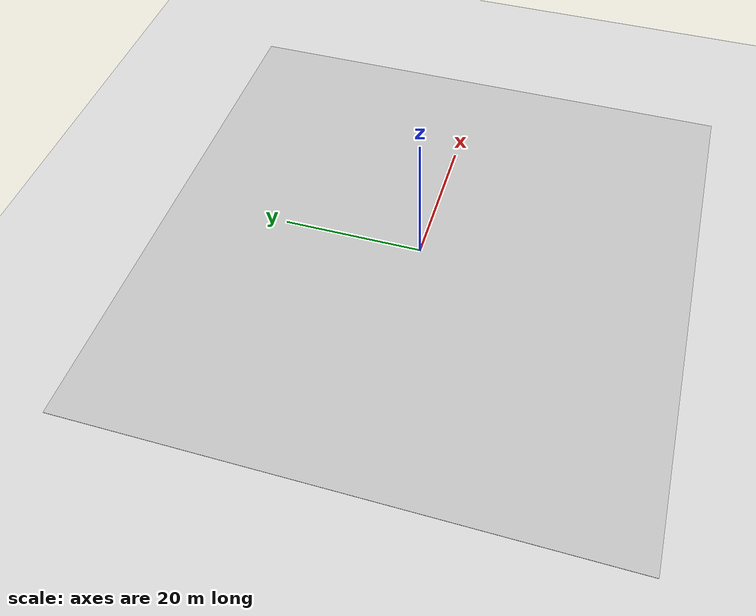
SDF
<?xml version="1.0" ?>

<sdf version="1.5">
	<world name="default">
		<!-- A global light source -->
		<include>
			<uri>model://sun</uri>
		</include>

		<!-- A ground plane -->
		<include>
			<uri>model://ground_plane</uri>
		</include>

		<!-- A ground plane -->
        <include>
            <uri>model://grass_plane</uri>
        </include>
    </world>
</sdf>

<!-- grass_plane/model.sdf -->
<sdf version="1.4">
  <model name="grass_plane">
    <static>true</static>
          <link name='link'>
        <collision name='collision'>
          <geometry>
            <plane>
              <normal>0 0 1</normal>
              <size>75 75</size>
            </plane>
          </geometry>
          <surface>
            <friction>
              <ode>
                <mu>100</mu>
                <mu2>50</mu2>
              </ode>
            </friction>
          </surface>
        </collision>
        <visual name='visual'>
          <cast_shadows>false</cast_shadows>
          <geometry>
            <plane>
              <normal>0 0 1</normal>
              <size>75 75</size>
            </plane>
          </geometry>
          <material>
            <script>
              <uri>model://grass_plane/materials/scripts</uri>
              <uri>model://grass_plane/materials/textures</uri>
              <name>grass_plane/Image</name>
            </script>
          </material>
        </visual>
      </link>

  </model>
</sdf>
